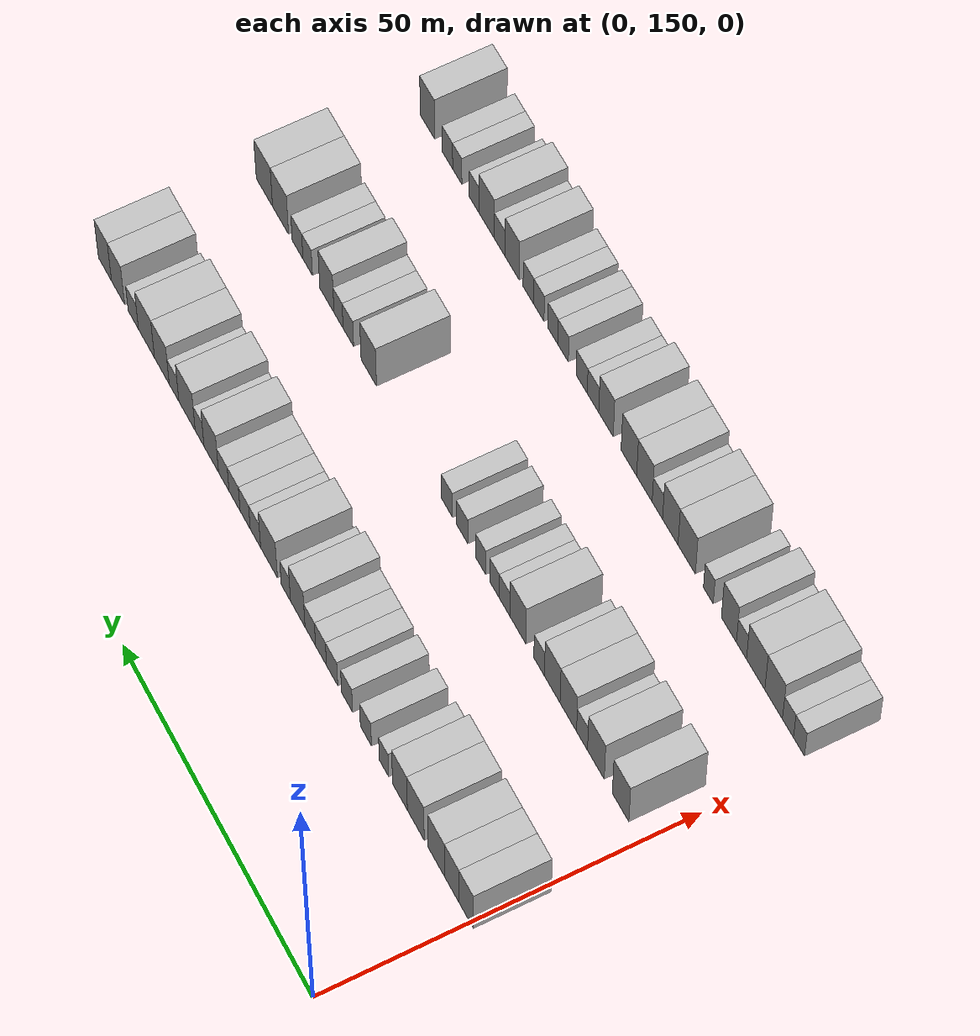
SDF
<sdf version="1.6">
 <world name="default">
  <model name="building_98">
   <static>1</static>
   <pose>25.0000 151.0022 0 0.000000 0.000000 0.000000</pose>
   <link name="link">
    <pose>0 0 4.50 0 0 0</pose>
    <collision name="collision"><geometry><box><size>10.0000 3.6112 9.0000</size></box></geometry></collision>
    <visual name="visual">
     <cast_shadows>0</cast_shadows>
     <geometry><box><size>10.0000 3.6112 9.0000</size></box></geometry>
     <material>
      <script>
       <uri>model://HANNAS_wall/materials/scripts</uri>
       <uri>model://HANNAS_wall/materials/textures</uri>
       <name>vrc/HANNAS_wall</name>
      </script>
     </material>
    </visual>
   </link>
  </model>
  <model name="building_99">
   <static>1</static>
   <pose>25.0000 154.6188 0 0.000000 0.000000 0.000000</pose>
   <link name="link">
    <pose>0 0 4.50 0 0 0</pose>
    <collision name="collision"><geometry><box><size>10.0000 3.6220 9.0000</size></box></geometry></collision>
    <visual name="visual">
     <cast_shadows>0</cast_shadows>
     <geometry><box><size>10.0000 3.6220 9.0000</size></box></geometry>
     <material>
      <script>
       <uri>model://HANNAS_wall/materials/scripts</uri>
       <uri>model://HANNAS_wall/materials/textures</uri>
       <name>vrc/HANNAS_wall</name>
      </script>
     </material>
    </visual>
   </link>
  </model>
  <model name="building_100">
   <static>1</static>
   <pose>25.0000 158.5015 0 0.000000 0.000000 0.000000</pose>
   <link name="link">
    <pose>0 0 4.50 0 0 0</pose>
    <collision name="collision"><geometry><box><size>10.0000 4.1433 9.0000</size></box></geometry></collision>
    <visual name="visual">
     <cast_shadows>0</cast_shadows>
     <geometry><box><size>10.0000 4.1433 9.0000</size></box></geometry>
     <material>
      <script>
       <uri>model://HANNAS_wall/materials/scripts</uri>
       <uri>model://HANNAS_wall/materials/textures</uri>
       <name>vrc/HANNAS_wall</name>
      </script>
     </material>
    </visual>
   </link>
  </model>
  <model name="building_101">
   <static>1</static>
   <pose>25.0000 163.7168 0 0.000000 0.000000 0.000000</pose>
   <link name="link">
    <pose>0 0 4.50 0 0 0</pose>
    <collision name="collision"><geometry><box><size>10.0000 4.2873 9.0000</size></box></geometry></collision>
    <visual name="visual">
     <cast_shadows>0</cast_shadows>
     <geometry><box><size>10.0000 4.2873 9.0000</size></box></geometry>
     <material>
      <script>
       <uri>model://HANNAS_wall/materials/scripts</uri>
       <uri>model://HANNAS_wall/materials/textures</uri>
       <name>vrc/HANNAS_wall</name>
      </script>
     </material>
    </visual>
   </link>
  </model>
  <model name="building_102">
   <static>1</static>
   <pose>25.0000 167.7423 0 0.000000 0.000000 0.000000</pose>
   <link name="link">
    <pose>0 0 4.50 0 0 0</pose>
    <collision name="collision"><geometry><box><size>10.0000 3.7638 9.0000</size></box></geometry></collision>
    <visual name="visual">
     <cast_shadows>0</cast_shadows>
     <geometry><box><size>10.0000 3.7638 9.0000</size></box></geometry>
     <material>
      <script>
       <uri>model://HANNAS_wall/materials/scripts</uri>
       <uri>model://HANNAS_wall/materials/textures</uri>
       <name>vrc/HANNAS_wall</name>
      </script>
     </material>
    </visual>
   </link>
  </model>
  <model name="building_103">
   <static>1</static>
   <pose>25.0000 171.8358 0 0.000000 0.000000 0.000000</pose>
   <link name="link">
    <pose>0 0 3.00 0 0 0</pose>
    <collision name="collision"><geometry><box><size>10.0000 2.4230 6.0000</size></box></geometry></collision>
    <visual name="visual">
     <cast_shadows>0</cast_shadows>
     <geometry><box><size>10.0000 2.4230 6.0000</size></box></geometry>
     <material>
      <script>
       <uri>model://HANNAS_wall/materials/scripts</uri>
       <uri>model://HANNAS_wall/materials/textures</uri>
       <name>vrc/HANNAS_wall</name>
      </script>
     </material>
    </visual>
   </link>
  </model>
  <model name="building_104">
   <static>1</static>
   <pose>25.0000 176.4850 0 0.000000 0.000000 0.000000</pose>
   <link name="link">
    <pose>0 0 3.00 0 0 0</pose>
    <collision name="collision"><geometry><box><size>10.0000 2.8755 6.0000</size></box></geometry></collision>
    <visual name="visual">
     <cast_shadows>0</cast_shadows>
     <geometry><box><size>10.0000 2.8755 6.0000</size></box></geometry>
     <material>
      <script>
       <uri>model://HANNAS_wall/materials/scripts</uri>
       <uri>model://HANNAS_wall/materials/textures</uri>
       <name>vrc/HANNAS_wall</name>
      </script>
     </material>
    </visual>
   </link>
  </model>
  <model name="building_105">
   <static>1</static>
   <pose>25.0000 181.3511 0 0.000000 0.000000 0.000000</pose>
   <link name="link">
    <pose>0 0 3.00 0 0 0</pose>
    <collision name="collision"><geometry><box><size>10.0000 2.8566 6.0000</size></box></geometry></collision>
    <visual name="visual">
     <cast_shadows>0</cast_shadows>
     <geometry><box><size>10.0000 2.8566 6.0000</size></box></geometry>
     <material>
      <script>
       <uri>model://HANNAS_wall/materials/scripts</uri>
       <uri>model://HANNAS_wall/materials/textures</uri>
       <name>vrc/HANNAS_wall</name>
      </script>
     </material>
    </visual>
   </link>
  </model>
  <model name="building_106">
   <static>1</static>
   <pose>25.0000 185.2522 0 0.000000 0.000000 0.000000</pose>
   <link name="link">
    <pose>0 0 3.00 0 0 0</pose>
    <collision name="collision"><geometry><box><size>10.0000 2.9457 6.0000</size></box></geometry></collision>
    <visual name="visual">
     <cast_shadows>0</cast_shadows>
     <geometry><box><size>10.0000 2.9457 6.0000</size></box></geometry>
     <material>
      <script>
       <uri>model://HANNAS_wall/materials/scripts</uri>
       <uri>model://HANNAS_wall/materials/textures</uri>
       <name>vrc/HANNAS_wall</name>
      </script>
     </material>
    </visual>
   </link>
  </model>
  <model name="building_107">
   <static>1</static>
   <pose>25.0000 188.1604 0 0.000000 0.000000 0.000000</pose>
   <link name="link">
    <pose>0 0 3.00 0 0 0</pose>
    <collision name="collision"><geometry><box><size>10.0000 2.8707 6.0000</size></box></geometry></collision>
    <visual name="visual">
     <cast_shadows>0</cast_shadows>
     <geometry><box><size>10.0000 2.8707 6.0000</size></box></geometry>
     <material>
      <script>
       <uri>model://HANNAS_wall/materials/scripts</uri>
       <uri>model://HANNAS_wall/materials/textures</uri>
       <name>vrc/HANNAS_wall</name>
      </script>
     </material>
    </visual>
   </link>
  </model>
  <model name="building_108">
   <static>1</static>
   <pose>25.0000 190.9846 0 0.000000 0.000000 0.000000</pose>
   <link name="link">
    <pose>0 0 3.00 0 0 0</pose>
    <collision name="collision"><geometry><box><size>10.0000 2.7776 6.0000</size></box></geometry></collision>
    <visual name="visual">
     <cast_shadows>0</cast_shadows>
     <geometry><box><size>10.0000 2.7776 6.0000</size></box></geometry>
     <material>
      <script>
       <uri>model://HANNAS_wall/materials/scripts</uri>
       <uri>model://HANNAS_wall/materials/textures</uri>
       <name>vrc/HANNAS_wall</name>
      </script>
     </material>
    </visual>
   </link>
  </model>
  <model name="building_109">
   <static>1</static>
   <pose>25.0000 194.2835 0 0.000000 0.000000 0.000000</pose>
   <link name="link">
    <pose>0 0 4.50 0 0 0</pose>
    <collision name="collision"><geometry><box><size>10.0000 3.8203 9.0000</size></box></geometry></collision>
    <visual name="visual">
     <cast_shadows>0</cast_shadows>
     <geometry><box><size>10.0000 3.8203 9.0000</size></box></geometry>
     <material>
      <script>
       <uri>model://HANNAS_wall/materials/scripts</uri>
       <uri>model://HANNAS_wall/materials/textures</uri>
       <name>vrc/HANNAS_wall</name>
      </script>
     </material>
    </visual>
   </link>
  </model>
  <model name="building_110">
   <static>1</static>
   <pose>25.0000 197.4323 0 0.000000 0.000000 0.000000</pose>
   <link name="link">
    <pose>0 0 3.00 0 0 0</pose>
    <collision name="collision"><geometry><box><size>10.0000 2.4772 6.0000</size></box></geometry></collision>
    <visual name="visual">
     <cast_shadows>0</cast_shadows>
     <geometry><box><size>10.0000 2.4772 6.0000</size></box></geometry>
     <material>
      <script>
       <uri>model://HANNAS_wall/materials/scripts</uri>
       <uri>model://HANNAS_wall/materials/textures</uri>
       <name>vrc/HANNAS_wall</name>
      </script>
     </material>
    </visual>
   </link>
  </model>
  <model name="building_111">
   <static>1</static>
   <pose>25.0000 201.9147 0 0.000000 0.000000 0.000000</pose>
   <link name="link">
    <pose>0 0 4.50 0 0 0</pose>
    <collision name="collision"><geometry><box><size>10.0000 4.4876 9.0000</size></box></geometry></collision>
    <visual name="visual">
     <cast_shadows>0</cast_shadows>
     <geometry><box><size>10.0000 4.4876 9.0000</size></box></geometry>
     <material>
      <script>
       <uri>model://HANNAS_wall/materials/scripts</uri>
       <uri>model://HANNAS_wall/materials/textures</uri>
       <name>vrc/HANNAS_wall</name>
      </script>
     </material>
    </visual>
   </link>
  </model>
  <model name="building_112">
   <static>1</static>
   <pose>25.0000 205.5487 0 0.000000 0.000000 0.000000</pose>
   <link name="link">
    <pose>0 0 3.00 0 0 0</pose>
    <collision name="collision"><geometry><box><size>10.0000 2.7806 6.0000</size></box></geometry></collision>
    <visual name="visual">
     <cast_shadows>0</cast_shadows>
     <geometry><box><size>10.0000 2.7806 6.0000</size></box></geometry>
     <material>
      <script>
       <uri>model://HANNAS_wall/materials/scripts</uri>
       <uri>model://HANNAS_wall/materials/textures</uri>
       <name>vrc/HANNAS_wall</name>
      </script>
     </material>
    </visual>
   </link>
  </model>
  <model name="building_113">
   <static>1</static>
   <pose>25.0000 208.3070 0 0.000000 0.000000 0.000000</pose>
   <link name="link">
    <pose>0 0 3.00 0 0 0</pose>
    <collision name="collision"><geometry><box><size>10.0000 2.7360 6.0000</size></box></geometry></collision>
    <visual name="visual">
     <cast_shadows>0</cast_shadows>
     <geometry><box><size>10.0000 2.7360 6.0000</size></box></geometry>
     <material>
      <script>
       <uri>model://HANNAS_wall/materials/scripts</uri>
       <uri>model://HANNAS_wall/materials/textures</uri>
       <name>vrc/HANNAS_wall</name>
      </script>
     </material>
    </visual>
   </link>
  </model>
  <model name="building_114">
   <static>1</static>
   <pose>25.0000 211.1646 0 0.000000 0.000000 0.000000</pose>
   <link name="link">
    <pose>0 0 3.00 0 0 0</pose>
    <collision name="collision"><geometry><box><size>10.0000 2.9790 6.0000</size></box></geometry></collision>
    <visual name="visual">
     <cast_shadows>0</cast_shadows>
     <geometry><box><size>10.0000 2.9790 6.0000</size></box></geometry>
     <material>
      <script>
       <uri>model://HANNAS_wall/materials/scripts</uri>
       <uri>model://HANNAS_wall/materials/textures</uri>
       <name>vrc/HANNAS_wall</name>
      </script>
     </material>
    </visual>
   </link>
  </model>
  <model name="building_115">
   <static>1</static>
   <pose>25.0000 214.0817 0 0.000000 0.000000 0.000000</pose>
   <link name="link">
    <pose>0 0 3.00 0 0 0</pose>
    <collision name="collision"><geometry><box><size>10.0000 2.8554 6.0000</size></box></geometry></collision>
    <visual name="visual">
     <cast_shadows>0</cast_shadows>
     <geometry><box><size>10.0000 2.8554 6.0000</size></box></geometry>
     <material>
      <script>
       <uri>model://HANNAS_wall/materials/scripts</uri>
       <uri>model://HANNAS_wall/materials/textures</uri>
       <name>vrc/HANNAS_wall</name>
      </script>
     </material>
    </visual>
   </link>
  </model>
  <model name="building_116">
   <static>1</static>
   <pose>25.0000 217.4850 0 0.000000 0.000000 0.000000</pose>
   <link name="link">
    <pose>0 0 4.50 0 0 0</pose>
    <collision name="collision"><geometry><box><size>10.0000 3.9511 9.0000</size></box></geometry></collision>
    <visual name="visual">
     <cast_shadows>0</cast_shadows>
     <geometry><box><size>10.0000 3.9511 9.0000</size></box></geometry>
     <material>
      <script>
       <uri>model://HANNAS_wall/materials/scripts</uri>
       <uri>model://HANNAS_wall/materials/textures</uri>
       <name>vrc/HANNAS_wall</name>
      </script>
     </material>
    </visual>
   </link>
  </model>
  <model name="building_117">
   <static>1</static>
   <pose>25.0000 220.6739 0 0.000000 0.000000 0.000000</pose>
   <link name="link">
    <pose>0 0 3.00 0 0 0</pose>
    <collision name="collision"><geometry><box><size>10.0000 2.4268 6.0000</size></box></geometry></collision>
    <visual name="visual">
     <cast_shadows>0</cast_shadows>
     <geometry><box><size>10.0000 2.4268 6.0000</size></box></geometry>
     <material>
      <script>
       <uri>model://HANNAS_wall/materials/scripts</uri>
       <uri>model://HANNAS_wall/materials/textures</uri>
       <name>vrc/HANNAS_wall</name>
      </script>
     </material>
    </visual>
   </link>
  </model>
  <model name="building_118">
   <static>1</static>
   <pose>25.0000 224.1111 0 0.000000 0.000000 0.000000</pose>
   <link name="link">
    <pose>0 0 4.50 0 0 0</pose>
    <collision name="collision"><geometry><box><size>10.0000 4.4477 9.0000</size></box></geometry></collision>
    <visual name="visual">
     <cast_shadows>0</cast_shadows>
     <geometry><box><size>10.0000 4.4477 9.0000</size></box></geometry>
     <material>
      <script>
       <uri>model://HANNAS_wall/materials/scripts</uri>
       <uri>model://HANNAS_wall/materials/textures</uri>
       <name>vrc/HANNAS_wall</name>
      </script>
     </material>
    </visual>
   </link>
  </model>
  <model name="building_119">
   <static>1</static>
   <pose>25.0000 227.6734 0 0.000000 0.000000 0.000000</pose>
   <link name="link">
    <pose>0 0 3.00 0 0 0</pose>
    <collision name="collision"><geometry><box><size>10.0000 2.6770 6.0000</size></box></geometry></collision>
    <visual name="visual">
     <cast_shadows>0</cast_shadows>
     <geometry><box><size>10.0000 2.6770 6.0000</size></box></geometry>
     <material>
      <script>
       <uri>model://HANNAS_wall/materials/scripts</uri>
       <uri>model://HANNAS_wall/materials/textures</uri>
       <name>vrc/HANNAS_wall</name>
      </script>
     </material>
    </visual>
   </link>
  </model>
  <model name="building_120">
   <static>1</static>
   <pose>25.0000 231.0528 0 0.000000 0.000000 0.000000</pose>
   <link name="link">
    <pose>0 0 4.50 0 0 0</pose>
    <collision name="collision"><geometry><box><size>10.0000 4.0817 9.0000</size></box></geometry></collision>
    <visual name="visual">
     <cast_shadows>0</cast_shadows>
     <geometry><box><size>10.0000 4.0817 9.0000</size></box></geometry>
     <material>
      <script>
       <uri>model://HANNAS_wall/materials/scripts</uri>
       <uri>model://HANNAS_wall/materials/textures</uri>
       <name>vrc/HANNAS_wall</name>
      </script>
     </material>
    </visual>
   </link>
  </model>
  <model name="building_121">
   <static>1</static>
   <pose>25.0000 235.3153 0 0.000000 0.000000 0.000000</pose>
   <link name="link">
    <pose>0 0 4.50 0 0 0</pose>
    <collision name="collision"><geometry><box><size>10.0000 4.4433 9.0000</size></box></geometry></collision>
    <visual name="visual">
     <cast_shadows>0</cast_shadows>
     <geometry><box><size>10.0000 4.4433 9.0000</size></box></geometry>
     <material>
      <script>
       <uri>model://HANNAS_wall/materials/scripts</uri>
       <uri>model://HANNAS_wall/materials/textures</uri>
       <name>vrc/HANNAS_wall</name>
      </script>
     </material>
    </visual>
   </link>
  </model>
  <model name="building_122">
   <static>1</static>
   <pose>25.0000 238.9816 0 0.000000 0.000000 0.000000</pose>
   <link name="link">
    <pose>0 0 3.00 0 0 0</pose>
    <collision name="collision"><geometry><box><size>10.0000 2.8893 6.0000</size></box></geometry></collision>
    <visual name="visual">
     <cast_shadows>0</cast_shadows>
     <geometry><box><size>10.0000 2.8893 6.0000</size></box></geometry>
     <material>
      <script>
       <uri>model://HANNAS_wall/materials/scripts</uri>
       <uri>model://HANNAS_wall/materials/textures</uri>
       <name>vrc/HANNAS_wall</name>
      </script>
     </material>
    </visual>
   </link>
  </model>
  <model name="building_123">
   <static>1</static>
   <pose>25.0000 243.2667 0 0.000000 0.000000 0.000000</pose>
   <link name="link">
    <pose>0 0 4.50 0 0 0</pose>
    <collision name="collision"><geometry><box><size>10.0000 3.6809 9.0000</size></box></geometry></collision>
    <visual name="visual">
     <cast_shadows>0</cast_shadows>
     <geometry><box><size>10.0000 3.6809 9.0000</size></box></geometry>
     <material>
      <script>
       <uri>model://HANNAS_wall/materials/scripts</uri>
       <uri>model://HANNAS_wall/materials/textures</uri>
       <name>vrc/HANNAS_wall</name>
      </script>
     </material>
    </visual>
   </link>
  </model>
  <model name="building_124">
   <static>1</static>
   <pose>25.0000 246.9522 0 0.000000 0.000000 0.000000</pose>
   <link name="link">
    <pose>0 0 4.50 0 0 0</pose>
    <collision name="collision"><geometry><box><size>10.0000 3.6901 9.0000</size></box></geometry></collision>
    <visual name="visual">
     <cast_shadows>0</cast_shadows>
     <geometry><box><size>10.0000 3.6901 9.0000</size></box></geometry>
     <material>
      <script>
       <uri>model://HANNAS_wall/materials/scripts</uri>
       <uri>model://HANNAS_wall/materials/textures</uri>
       <name>vrc/HANNAS_wall</name>
      </script>
     </material>
    </visual>
   </link>
  </model>
  <model name="building_225">
   <static>1</static>
   <pose>47.0000 154.9216 0 0.000000 0.000000 0.000000</pose>
   <link name="link">
    <pose>0 0 4.50 0 0 0</pose>
    <collision name="collision"><geometry><box><size>10.0000 4.0617 9.0000</size></box></geometry></collision>
    <visual name="visual">
     <cast_shadows>0</cast_shadows>
     <geometry><box><size>10.0000 4.0617 9.0000</size></box></geometry>
     <material>
      <script>
       <uri>model://HANNAS_wall/materials/scripts</uri>
       <uri>model://HANNAS_wall/materials/textures</uri>
       <name>vrc/HANNAS_wall</name>
      </script>
     </material>
    </visual>
   </link>
  </model>
  <model name="building_226">
   <static>1</static>
   <pose>47.0000 161.0311 0 0.000000 0.000000 0.000000</pose>
   <link name="link">
    <pose>0 0 4.50 0 0 0</pose>
    <collision name="collision"><geometry><box><size>10.0000 4.1574 9.0000</size></box></geometry></collision>
    <visual name="visual">
     <cast_shadows>0</cast_shadows>
     <geometry><box><size>10.0000 4.1574 9.0000</size></box></geometry>
     <material>
      <script>
       <uri>model://HANNAS_wall/materials/scripts</uri>
       <uri>model://HANNAS_wall/materials/textures</uri>
       <name>vrc/HANNAS_wall</name>
      </script>
     </material>
    </visual>
   </link>
  </model>
  <model name="building_227">
   <static>1</static>
   <pose>47.0000 164.4727 0 0.000000 0.000000 0.000000</pose>
   <link name="link">
    <pose>0 0 3.00 0 0 0</pose>
    <collision name="collision"><geometry><box><size>10.0000 2.7258 6.0000</size></box></geometry></collision>
    <visual name="visual">
     <cast_shadows>0</cast_shadows>
     <geometry><box><size>10.0000 2.7258 6.0000</size></box></geometry>
     <material>
      <script>
       <uri>model://HANNAS_wall/materials/scripts</uri>
       <uri>model://HANNAS_wall/materials/textures</uri>
       <name>vrc/HANNAS_wall</name>
      </script>
     </material>
    </visual>
   </link>
  </model>
  <model name="building_228">
   <static>1</static>
   <pose>47.0000 167.8966 0 0.000000 0.000000 0.000000</pose>
   <link name="link">
    <pose>0 0 4.50 0 0 0</pose>
    <collision name="collision"><geometry><box><size>10.0000 4.1222 9.0000</size></box></geometry></collision>
    <visual name="visual">
     <cast_shadows>0</cast_shadows>
     <geometry><box><size>10.0000 4.1222 9.0000</size></box></geometry>
     <material>
      <script>
       <uri>model://HANNAS_wall/materials/scripts</uri>
       <uri>model://HANNAS_wall/materials/textures</uri>
       <name>vrc/HANNAS_wall</name>
      </script>
     </material>
    </visual>
   </link>
  </model>
  <model name="building_229">
   <static>1</static>
   <pose>47.0000 171.9178 0 0.000000 0.000000 0.000000</pose>
   <link name="link">
    <pose>0 0 4.50 0 0 0</pose>
    <collision name="collision"><geometry><box><size>10.0000 3.9202 9.0000</size></box></geometry></collision>
    <visual name="visual">
     <cast_shadows>0</cast_shadows>
     <geometry><box><size>10.0000 3.9202 9.0000</size></box></geometry>
     <material>
      <script>
       <uri>model://HANNAS_wall/materials/scripts</uri>
       <uri>model://HANNAS_wall/materials/textures</uri>
       <name>vrc/HANNAS_wall</name>
      </script>
     </material>
    </visual>
   </link>
  </model>
  <model name="building_230">
   <static>1</static>
   <pose>47.0000 175.2188 0 0.000000 0.000000 0.000000</pose>
   <link name="link">
    <pose>0 0 3.00 0 0 0</pose>
    <collision name="collision"><geometry><box><size>10.0000 2.6819 6.0000</size></box></geometry></collision>
    <visual name="visual">
     <cast_shadows>0</cast_shadows>
     <geometry><box><size>10.0000 2.6819 6.0000</size></box></geometry>
     <material>
      <script>
       <uri>model://HANNAS_wall/materials/scripts</uri>
       <uri>model://HANNAS_wall/materials/textures</uri>
       <name>vrc/HANNAS_wall</name>
      </script>
     </material>
    </visual>
   </link>
  </model>
  <model name="building_231">
   <static>1</static>
   <pose>47.0000 180.5723 0 0.000000 0.000000 0.000000</pose>
   <link name="link">
    <pose>0 0 4.50 0 0 0</pose>
    <collision name="collision"><geometry><box><size>10.0000 4.0250 9.0000</size></box></geometry></collision>
    <visual name="visual">
     <cast_shadows>0</cast_shadows>
     <geometry><box><size>10.0000 4.0250 9.0000</size></box></geometry>
     <material>
      <script>
       <uri>model://HANNAS_wall/materials/scripts</uri>
       <uri>model://HANNAS_wall/materials/textures</uri>
       <name>vrc/HANNAS_wall</name>
      </script>
     </material>
    </visual>
   </link>
  </model>
  <model name="building_232">
   <static>1</static>
   <pose>47.0000 183.9924 0 0.000000 0.000000 0.000000</pose>
   <link name="link">
    <pose>0 0 3.00 0 0 0</pose>
    <collision name="collision"><geometry><box><size>10.0000 2.8152 6.0000</size></box></geometry></collision>
    <visual name="visual">
     <cast_shadows>0</cast_shadows>
     <geometry><box><size>10.0000 2.8152 6.0000</size></box></geometry>
     <material>
      <script>
       <uri>model://HANNAS_wall/materials/scripts</uri>
       <uri>model://HANNAS_wall/materials/textures</uri>
       <name>vrc/HANNAS_wall</name>
      </script>
     </material>
    </visual>
   </link>
  </model>
  <model name="building_233">
   <static>1</static>
   <pose>47.0000 186.6085 0 0.000000 0.000000 0.000000</pose>
   <link name="link">
    <pose>0 0 3.00 0 0 0</pose>
    <collision name="collision"><geometry><box><size>10.0000 2.4171 6.0000</size></box></geometry></collision>
    <visual name="visual">
     <cast_shadows>0</cast_shadows>
     <geometry><box><size>10.0000 2.4171 6.0000</size></box></geometry>
     <material>
      <script>
       <uri>model://HANNAS_wall/materials/scripts</uri>
       <uri>model://HANNAS_wall/materials/textures</uri>
       <name>vrc/HANNAS_wall</name>
      </script>
     </material>
    </visual>
   </link>
  </model>
  <model name="building_234">
   <static>1</static>
   <pose>47.0000 190.1252 0 0.000000 0.000000 0.000000</pose>
   <link name="link">
    <pose>0 0 3.00 0 0 0</pose>
    <collision name="collision"><geometry><box><size>10.0000 2.6162 6.0000</size></box></geometry></collision>
    <visual name="visual">
     <cast_shadows>0</cast_shadows>
     <geometry><box><size>10.0000 2.6162 6.0000</size></box></geometry>
     <material>
      <script>
       <uri>model://HANNAS_wall/materials/scripts</uri>
       <uri>model://HANNAS_wall/materials/textures</uri>
       <name>vrc/HANNAS_wall</name>
      </script>
     </material>
    </visual>
   </link>
  </model>
  <model name="building_235">
   <static>1</static>
   <pose>47.0000 194.9132 0 0.000000 0.000000 0.000000</pose>
   <link name="link">
    <pose>0 0 3.00 0 0 0</pose>
    <collision name="collision"><geometry><box><size>10.0000 2.9598 6.0000</size></box></geometry></collision>
    <visual name="visual">
     <cast_shadows>0</cast_shadows>
     <geometry><box><size>10.0000 2.9598 6.0000</size></box></geometry>
     <material>
      <script>
       <uri>model://HANNAS_wall/materials/scripts</uri>
       <uri>model://HANNAS_wall/materials/textures</uri>
       <name>vrc/HANNAS_wall</name>
      </script>
     </material>
    </visual>
   </link>
  </model>
  <model name="building_236">
   <static>1</static>
   <pose>47.0000 198.8404 0 0.000000 0.000000 0.000000</pose>
   <link name="link">
    <pose>0 0 3.00 0 0 0</pose>
    <collision name="collision"><geometry><box><size>10.0000 2.8946 6.0000</size></box></geometry></collision>
    <visual name="visual">
     <cast_shadows>0</cast_shadows>
     <geometry><box><size>10.0000 2.8946 6.0000</size></box></geometry>
     <material>
      <script>
       <uri>model://HANNAS_wall/materials/scripts</uri>
       <uri>model://HANNAS_wall/materials/textures</uri>
       <name>vrc/HANNAS_wall</name>
      </script>
     </material>
    </visual>
   </link>
  </model>
  <model name="building_237">
   <static>1</static>
   <pose>47.0000 219.4676 0 0.000000 0.000000 0.000000</pose>
   <link name="link">
    <pose>0 0 4.50 0 0 0</pose>
    <collision name="collision"><geometry><box><size>10.0000 4.1200 9.0000</size></box></geometry></collision>
    <visual name="visual">
     <cast_shadows>0</cast_shadows>
     <geometry><box><size>10.0000 4.1200 9.0000</size></box></geometry>
     <material>
      <script>
       <uri>model://HANNAS_wall/materials/scripts</uri>
       <uri>model://HANNAS_wall/materials/textures</uri>
       <name>vrc/HANNAS_wall</name>
      </script>
     </material>
    </visual>
   </link>
  </model>
  <model name="building_238">
   <static>1</static>
   <pose>47.0000 224.9446 0 0.000000 0.000000 0.000000</pose>
   <link name="link">
    <pose>0 0 3.00 0 0 0</pose>
    <collision name="collision"><geometry><box><size>10.0000 2.8341 6.0000</size></box></geometry></collision>
    <visual name="visual">
     <cast_shadows>0</cast_shadows>
     <geometry><box><size>10.0000 2.8341 6.0000</size></box></geometry>
     <material>
      <script>
       <uri>model://HANNAS_wall/materials/scripts</uri>
       <uri>model://HANNAS_wall/materials/textures</uri>
       <name>vrc/HANNAS_wall</name>
      </script>
     </material>
    </visual>
   </link>
  </model>
  <model name="building_239">
   <static>1</static>
   <pose>47.0000 227.5889 0 0.000000 0.000000 0.000000</pose>
   <link name="link">
    <pose>0 0 3.00 0 0 0</pose>
    <collision name="collision"><geometry><box><size>10.0000 2.4545 6.0000</size></box></geometry></collision>
    <visual name="visual">
     <cast_shadows>0</cast_shadows>
     <geometry><box><size>10.0000 2.4545 6.0000</size></box></geometry>
     <material>
      <script>
       <uri>model://HANNAS_wall/materials/scripts</uri>
       <uri>model://HANNAS_wall/materials/textures</uri>
       <name>vrc/HANNAS_wall</name>
      </script>
     </material>
    </visual>
   </link>
  </model>
  <model name="building_240">
   <static>1</static>
   <pose>47.0000 230.7404 0 0.000000 0.000000 0.000000</pose>
   <link name="link">
    <pose>0 0 4.50 0 0 0</pose>
    <collision name="collision"><geometry><box><size>10.0000 3.8484 9.0000</size></box></geometry></collision>
    <visual name="visual">
     <cast_shadows>0</cast_shadows>
     <geometry><box><size>10.0000 3.8484 9.0000</size></box></geometry>
     <material>
      <script>
       <uri>model://HANNAS_wall/materials/scripts</uri>
       <uri>model://HANNAS_wall/materials/textures</uri>
       <name>vrc/HANNAS_wall</name>
      </script>
     </material>
    </visual>
   </link>
  </model>
  <model name="building_241">
   <static>1</static>
   <pose>47.0000 235.9636 0 0.000000 0.000000 0.000000</pose>
   <link name="link">
    <pose>0 0 3.00 0 0 0</pose>
    <collision name="collision"><geometry><box><size>10.0000 2.5980 6.0000</size></box></geometry></collision>
    <visual name="visual">
     <cast_shadows>0</cast_shadows>
     <geometry><box><size>10.0000 2.5980 6.0000</size></box></geometry>
     <material>
      <script>
       <uri>model://HANNAS_wall/materials/scripts</uri>
       <uri>model://HANNAS_wall/materials/textures</uri>
       <name>vrc/HANNAS_wall</name>
      </script>
     </material>
    </visual>
   </link>
  </model>
  <model name="building_242">
   <static>1</static>
   <pose>47.0000 238.7320 0 0.000000 0.000000 0.000000</pose>
   <link name="link">
    <pose>0 0 3.00 0 0 0</pose>
    <collision name="collision"><geometry><box><size>10.0000 2.9387 6.0000</size></box></geometry></collision>
    <visual name="visual">
     <cast_shadows>0</cast_shadows>
     <geometry><box><size>10.0000 2.9387 6.0000</size></box></geometry>
     <material>
      <script>
       <uri>model://HANNAS_wall/materials/scripts</uri>
       <uri>model://HANNAS_wall/materials/textures</uri>
       <name>vrc/HANNAS_wall</name>
      </script>
     </material>
    </visual>
   </link>
  </model>
  <model name="building_243">
   <static>1</static>
   <pose>47.0000 243.4072 0 0.000000 0.000000 0.000000</pose>
   <link name="link">
    <pose>0 0 4.50 0 0 0</pose>
    <collision name="collision"><geometry><box><size>10.0000 4.4118 9.0000</size></box></geometry></collision>
    <visual name="visual">
     <cast_shadows>0</cast_shadows>
     <geometry><box><size>10.0000 4.4118 9.0000</size></box></geometry>
     <material>
      <script>
       <uri>model://HANNAS_wall/materials/scripts</uri>
       <uri>model://HANNAS_wall/materials/textures</uri>
       <name>vrc/HANNAS_wall</name>
      </script>
     </material>
    </visual>
   </link>
  </model>
  <model name="building_244">
   <static>1</static>
   <pose>47.0000 247.8577 0 0.000000 0.000000 0.000000</pose>
   <link name="link">
    <pose>0 0 4.50 0 0 0</pose>
    <collision name="collision"><geometry><box><size>10.0000 4.4893 9.0000</size></box></geometry></collision>
    <visual name="visual">
     <cast_shadows>0</cast_shadows>
     <geometry><box><size>10.0000 4.4893 9.0000</size></box></geometry>
     <material>
      <script>
       <uri>model://HANNAS_wall/materials/scripts</uri>
       <uri>model://HANNAS_wall/materials/textures</uri>
       <name>vrc/HANNAS_wall</name>
      </script>
     </material>
    </visual>
   </link>
  </model>
  <model name="building_339">
   <static>1</static>
   <pose>69.0000 152.2772 0 0.000000 0.000000 0.000000</pose>
   <link name="link">
    <pose>0 0 3.00 0 0 0</pose>
    <collision name="collision"><geometry><box><size>10.0000 2.6586 6.0000</size></box></geometry></collision>
    <visual name="visual">
     <cast_shadows>0</cast_shadows>
     <geometry><box><size>10.0000 2.6586 6.0000</size></box></geometry>
     <material>
      <script>
       <uri>model://HANNAS_wall/materials/scripts</uri>
       <uri>model://HANNAS_wall/materials/textures</uri>
       <name>vrc/HANNAS_wall</name>
      </script>
     </material>
    </visual>
   </link>
  </model>
  <model name="building_340">
   <static>1</static>
   <pose>69.0000 154.9420 0 0.000000 0.000000 0.000000</pose>
   <link name="link">
    <pose>0 0 3.00 0 0 0</pose>
    <collision name="collision"><geometry><box><size>10.0000 2.6712 6.0000</size></box></geometry></collision>
    <visual name="visual">
     <cast_shadows>0</cast_shadows>
     <geometry><box><size>10.0000 2.6712 6.0000</size></box></geometry>
     <material>
      <script>
       <uri>model://HANNAS_wall/materials/scripts</uri>
       <uri>model://HANNAS_wall/materials/textures</uri>
       <name>vrc/HANNAS_wall</name>
      </script>
     </material>
    </visual>
   </link>
  </model>
  <model name="building_341">
   <static>1</static>
   <pose>69.0000 158.4082 0 0.000000 0.000000 0.000000</pose>
   <link name="link">
    <pose>0 0 4.50 0 0 0</pose>
    <collision name="collision"><geometry><box><size>10.0000 4.2612 9.0000</size></box></geometry></collision>
    <visual name="visual">
     <cast_shadows>0</cast_shadows>
     <geometry><box><size>10.0000 4.2612 9.0000</size></box></geometry>
     <material>
      <script>
       <uri>model://HANNAS_wall/materials/scripts</uri>
       <uri>model://HANNAS_wall/materials/textures</uri>
       <name>vrc/HANNAS_wall</name>
      </script>
     </material>
    </visual>
   </link>
  </model>
  <model name="building_342">
   <static>1</static>
   <pose>69.0000 162.7746 0 0.000000 0.000000 0.000000</pose>
   <link name="link">
    <pose>0 0 4.50 0 0 0</pose>
    <collision name="collision"><geometry><box><size>10.0000 4.4715 9.0000</size></box></geometry></collision>
    <visual name="visual">
     <cast_shadows>0</cast_shadows>
     <geometry><box><size>10.0000 4.4715 9.0000</size></box></geometry>
     <material>
      <script>
       <uri>model://HANNAS_wall/materials/scripts</uri>
       <uri>model://HANNAS_wall/materials/textures</uri>
       <name>vrc/HANNAS_wall</name>
      </script>
     </material>
    </visual>
   </link>
  </model>
  <model name="building_343">
   <static>1</static>
   <pose>69.0000 166.2478 0 0.000000 0.000000 0.000000</pose>
   <link name="link">
    <pose>0 0 3.00 0 0 0</pose>
    <collision name="collision"><geometry><box><size>10.0000 2.4749 6.0000</size></box></geometry></collision>
    <visual name="visual">
     <cast_shadows>0</cast_shadows>
     <geometry><box><size>10.0000 2.4749 6.0000</size></box></geometry>
     <material>
      <script>
       <uri>model://HANNAS_wall/materials/scripts</uri>
       <uri>model://HANNAS_wall/materials/textures</uri>
       <name>vrc/HANNAS_wall</name>
      </script>
     </material>
    </visual>
   </link>
  </model>
  <model name="building_344">
   <static>1</static>
   <pose>69.0000 169.3270 0 0.000000 0.000000 0.000000</pose>
   <link name="link">
    <pose>0 0 4.50 0 0 0</pose>
    <collision name="collision"><geometry><box><size>10.0000 3.6834 9.0000</size></box></geometry></collision>
    <visual name="visual">
     <cast_shadows>0</cast_shadows>
     <geometry><box><size>10.0000 3.6834 9.0000</size></box></geometry>
     <material>
      <script>
       <uri>model://HANNAS_wall/materials/scripts</uri>
       <uri>model://HANNAS_wall/materials/textures</uri>
       <name>vrc/HANNAS_wall</name>
      </script>
     </material>
    </visual>
   </link>
  </model>
  <model name="building_345">
   <static>1</static>
   <pose>69.0000 174.3810 0 0.000000 0.000000 0.000000</pose>
   <link name="link">
    <pose>0 0 3.00 0 0 0</pose>
    <collision name="collision"><geometry><box><size>10.0000 2.4246 6.0000</size></box></geometry></collision>
    <visual name="visual">
     <cast_shadows>0</cast_shadows>
     <geometry><box><size>10.0000 2.4246 6.0000</size></box></geometry>
     <material>
      <script>
       <uri>model://HANNAS_wall/materials/scripts</uri>
       <uri>model://HANNAS_wall/materials/textures</uri>
       <name>vrc/HANNAS_wall</name>
      </script>
     </material>
    </visual>
   </link>
  </model>
  <model name="building_346">
   <static>1</static>
   <pose>69.0000 179.7601 0 0.000000 0.000000 0.000000</pose>
   <link name="link">
    <pose>0 0 4.50 0 0 0</pose>
    <collision name="collision"><geometry><box><size>10.0000 4.3335 9.0000</size></box></geometry></collision>
    <visual name="visual">
     <cast_shadows>0</cast_shadows>
     <geometry><box><size>10.0000 4.3335 9.0000</size></box></geometry>
     <material>
      <script>
       <uri>model://HANNAS_wall/materials/scripts</uri>
       <uri>model://HANNAS_wall/materials/textures</uri>
       <name>vrc/HANNAS_wall</name>
      </script>
     </material>
    </visual>
   </link>
  </model>
  <model name="building_347">
   <static>1</static>
   <pose>69.0000 183.8630 0 0.000000 0.000000 0.000000</pose>
   <link name="link">
    <pose>0 0 4.50 0 0 0</pose>
    <collision name="collision"><geometry><box><size>10.0000 3.8722 9.0000</size></box></geometry></collision>
    <visual name="visual">
     <cast_shadows>0</cast_shadows>
     <geometry><box><size>10.0000 3.8722 9.0000</size></box></geometry>
     <material>
      <script>
       <uri>model://HANNAS_wall/materials/scripts</uri>
       <uri>model://HANNAS_wall/materials/textures</uri>
       <name>vrc/HANNAS_wall</name>
      </script>
     </material>
    </visual>
   </link>
  </model>
  <model name="building_348">
   <static>1</static>
   <pose>69.0000 187.1052 0 0.000000 0.000000 0.000000</pose>
   <link name="link">
    <pose>0 0 3.00 0 0 0</pose>
    <collision name="collision"><geometry><box><size>10.0000 2.6122 6.0000</size></box></geometry></collision>
    <visual name="visual">
     <cast_shadows>0</cast_shadows>
     <geometry><box><size>10.0000 2.6122 6.0000</size></box></geometry>
     <material>
      <script>
       <uri>model://HANNAS_wall/materials/scripts</uri>
       <uri>model://HANNAS_wall/materials/textures</uri>
       <name>vrc/HANNAS_wall</name>
      </script>
     </material>
    </visual>
   </link>
  </model>
  <model name="building_349">
   <static>1</static>
   <pose>69.0000 190.3741 0 0.000000 0.000000 0.000000</pose>
   <link name="link">
    <pose>0 0 4.50 0 0 0</pose>
    <collision name="collision"><geometry><box><size>10.0000 3.9257 9.0000</size></box></geometry></collision>
    <visual name="visual">
     <cast_shadows>0</cast_shadows>
     <geometry><box><size>10.0000 3.9257 9.0000</size></box></geometry>
     <material>
      <script>
       <uri>model://HANNAS_wall/materials/scripts</uri>
       <uri>model://HANNAS_wall/materials/textures</uri>
       <name>vrc/HANNAS_wall</name>
      </script>
     </material>
    </visual>
   </link>
  </model>
  <model name="building_350">
   <static>1</static>
   <pose>69.0000 194.3121 0 0.000000 0.000000 0.000000</pose>
   <link name="link">
    <pose>0 0 4.50 0 0 0</pose>
    <collision name="collision"><geometry><box><size>10.0000 3.9503 9.0000</size></box></geometry></collision>
    <visual name="visual">
     <cast_shadows>0</cast_shadows>
     <geometry><box><size>10.0000 3.9503 9.0000</size></box></geometry>
     <material>
      <script>
       <uri>model://HANNAS_wall/materials/scripts</uri>
       <uri>model://HANNAS_wall/materials/textures</uri>
       <name>vrc/HANNAS_wall</name>
      </script>
     </material>
    </visual>
   </link>
  </model>
  <model name="building_351">
   <static>1</static>
   <pose>69.0000 200.1412 0 0.000000 0.000000 0.000000</pose>
   <link name="link">
    <pose>0 0 4.50 0 0 0</pose>
    <collision name="collision"><geometry><box><size>10.0000 3.7079 9.0000</size></box></geometry></collision>
    <visual name="visual">
     <cast_shadows>0</cast_shadows>
     <geometry><box><size>10.0000 3.7079 9.0000</size></box></geometry>
     <material>
      <script>
       <uri>model://HANNAS_wall/materials/scripts</uri>
       <uri>model://HANNAS_wall/materials/textures</uri>
       <name>vrc/HANNAS_wall</name>
      </script>
     </material>
    </visual>
   </link>
  </model>
  <model name="building_352">
   <static>1</static>
   <pose>69.0000 203.4757 0 0.000000 0.000000 0.000000</pose>
   <link name="link">
    <pose>0 0 3.00 0 0 0</pose>
    <collision name="collision"><geometry><box><size>10.0000 2.9611 6.0000</size></box></geometry></collision>
    <visual name="visual">
     <cast_shadows>0</cast_shadows>
     <geometry><box><size>10.0000 2.9611 6.0000</size></box></geometry>
     <material>
      <script>
       <uri>model://HANNAS_wall/materials/scripts</uri>
       <uri>model://HANNAS_wall/materials/textures</uri>
       <name>vrc/HANNAS_wall</name>
      </script>
     </material>
    </visual>
   </link>
  </model>
  <model name="building_353">
   <static>1</static>
   <pose>69.0000 206.3869 0 0.000000 0.000000 0.000000</pose>
   <link name="link">
    <pose>0 0 3.00 0 0 0</pose>
    <collision name="collision"><geometry><box><size>10.0000 2.8614 6.0000</size></box></geometry></collision>
    <visual name="visual">
     <cast_shadows>0</cast_shadows>
     <geometry><box><size>10.0000 2.8614 6.0000</size></box></geometry>
     <material>
      <script>
       <uri>model://HANNAS_wall/materials/scripts</uri>
       <uri>model://HANNAS_wall/materials/textures</uri>
       <name>vrc/HANNAS_wall</name>
      </script>
     </material>
    </visual>
   </link>
  </model>
  <model name="building_354">
   <static>1</static>
   <pose>69.0000 211.1817 0 0.000000 0.000000 0.000000</pose>
   <link name="link">
    <pose>0 0 3.00 0 0 0</pose>
    <collision name="collision"><geometry><box><size>10.0000 2.7281 6.0000</size></box></geometry></collision>
    <visual name="visual">
     <cast_shadows>0</cast_shadows>
     <geometry><box><size>10.0000 2.7281 6.0000</size></box></geometry>
     <material>
      <script>
       <uri>model://HANNAS_wall/materials/scripts</uri>
       <uri>model://HANNAS_wall/materials/textures</uri>
       <name>vrc/HANNAS_wall</name>
      </script>
     </material>
    </visual>
   </link>
  </model>
  <model name="building_355">
   <static>1</static>
   <pose>69.0000 213.8429 0 0.000000 0.000000 0.000000</pose>
   <link name="link">
    <pose>0 0 3.00 0 0 0</pose>
    <collision name="collision"><geometry><box><size>10.0000 2.5944 6.0000</size></box></geometry></collision>
    <visual name="visual">
     <cast_shadows>0</cast_shadows>
     <geometry><box><size>10.0000 2.5944 6.0000</size></box></geometry>
     <material>
      <script>
       <uri>model://HANNAS_wall/materials/scripts</uri>
       <uri>model://HANNAS_wall/materials/textures</uri>
       <name>vrc/HANNAS_wall</name>
      </script>
     </material>
    </visual>
   </link>
  </model>
  <model name="building_356">
   <static>1</static>
   <pose>69.0000 217.5061 0 0.000000 0.000000 0.000000</pose>
   <link name="link">
    <pose>0 0 3.00 0 0 0</pose>
    <collision name="collision"><geometry><box><size>10.0000 2.7319 6.0000</size></box></geometry></collision>
    <visual name="visual">
     <cast_shadows>0</cast_shadows>
     <geometry><box><size>10.0000 2.7319 6.0000</size></box></geometry>
     <material>
      <script>
       <uri>model://HANNAS_wall/materials/scripts</uri>
       <uri>model://HANNAS_wall/materials/textures</uri>
       <name>vrc/HANNAS_wall</name>
      </script>
     </material>
    </visual>
   </link>
  </model>
  <model name="building_357">
   <static>1</static>
   <pose>69.0000 220.2481 0 0.000000 0.000000 0.000000</pose>
   <link name="link">
    <pose>0 0 3.00 0 0 0</pose>
    <collision name="collision"><geometry><box><size>10.0000 2.7521 6.0000</size></box></geometry></collision>
    <visual name="visual">
     <cast_shadows>0</cast_shadows>
     <geometry><box><size>10.0000 2.7521 6.0000</size></box></geometry>
     <material>
      <script>
       <uri>model://HANNAS_wall/materials/scripts</uri>
       <uri>model://HANNAS_wall/materials/textures</uri>
       <name>vrc/HANNAS_wall</name>
      </script>
     </material>
    </visual>
   </link>
  </model>
  <model name="building_358">
   <static>1</static>
   <pose>69.0000 224.4849 0 0.000000 0.000000 0.000000</pose>
   <link name="link">
    <pose>0 0 4.50 0 0 0</pose>
    <collision name="collision"><geometry><box><size>10.0000 3.7217 9.0000</size></box></geometry></collision>
    <visual name="visual">
     <cast_shadows>0</cast_shadows>
     <geometry><box><size>10.0000 3.7217 9.0000</size></box></geometry>
     <material>
      <script>
       <uri>model://HANNAS_wall/materials/scripts</uri>
       <uri>model://HANNAS_wall/materials/textures</uri>
       <name>vrc/HANNAS_wall</name>
      </script>
     </material>
    </visual>
   </link>
  </model>
  <model name="building_359">
   <static>1</static>
   <pose>69.0000 227.7780 0 0.000000 0.000000 0.000000</pose>
   <link name="link">
    <pose>0 0 3.00 0 0 0</pose>
    <collision name="collision"><geometry><box><size>10.0000 2.8644 6.0000</size></box></geometry></collision>
    <visual name="visual">
     <cast_shadows>0</cast_shadows>
     <geometry><box><size>10.0000 2.8644 6.0000</size></box></geometry>
     <material>
      <script>
       <uri>model://HANNAS_wall/materials/scripts</uri>
       <uri>model://HANNAS_wall/materials/textures</uri>
       <name>vrc/HANNAS_wall</name>
      </script>
     </material>
    </visual>
   </link>
  </model>
  <model name="building_360">
   <static>1</static>
   <pose>69.0000 231.2612 0 0.000000 0.000000 0.000000</pose>
   <link name="link">
    <pose>0 0 4.50 0 0 0</pose>
    <collision name="collision"><geometry><box><size>10.0000 4.1020 9.0000</size></box></geometry></collision>
    <visual name="visual">
     <cast_shadows>0</cast_shadows>
     <geometry><box><size>10.0000 4.1020 9.0000</size></box></geometry>
     <material>
      <script>
       <uri>model://HANNAS_wall/materials/scripts</uri>
       <uri>model://HANNAS_wall/materials/textures</uri>
       <name>vrc/HANNAS_wall</name>
      </script>
     </material>
    </visual>
   </link>
  </model>
  <model name="building_361">
   <static>1</static>
   <pose>69.0000 234.5837 0 0.000000 0.000000 0.000000</pose>
   <link name="link">
    <pose>0 0 3.00 0 0 0</pose>
    <collision name="collision"><geometry><box><size>10.0000 2.5430 6.0000</size></box></geometry></collision>
    <visual name="visual">
     <cast_shadows>0</cast_shadows>
     <geometry><box><size>10.0000 2.5430 6.0000</size></box></geometry>
     <material>
      <script>
       <uri>model://HANNAS_wall/materials/scripts</uri>
       <uri>model://HANNAS_wall/materials/textures</uri>
       <name>vrc/HANNAS_wall</name>
      </script>
     </material>
    </visual>
   </link>
  </model>
  <model name="building_362">
   <static>1</static>
   <pose>69.0000 239.0878 0 0.000000 0.000000 0.000000</pose>
   <link name="link">
    <pose>0 0 3.00 0 0 0</pose>
    <collision name="collision"><geometry><box><size>10.0000 2.4651 6.0000</size></box></geometry></collision>
    <visual name="visual">
     <cast_shadows>0</cast_shadows>
     <geometry><box><size>10.0000 2.4651 6.0000</size></box></geometry>
     <material>
      <script>
       <uri>model://HANNAS_wall/materials/scripts</uri>
       <uri>model://HANNAS_wall/materials/textures</uri>
       <name>vrc/HANNAS_wall</name>
      </script>
     </material>
    </visual>
   </link>
  </model>
  <model name="building_363">
   <static>1</static>
   <pose>69.0000 241.7337 0 0.000000 0.000000 0.000000</pose>
   <link name="link">
    <pose>0 0 3.00 0 0 0</pose>
    <collision name="collision"><geometry><box><size>10.0000 2.8267 6.0000</size></box></geometry></collision>
    <visual name="visual">
     <cast_shadows>0</cast_shadows>
     <geometry><box><size>10.0000 2.8267 6.0000</size></box></geometry>
     <material>
      <script>
       <uri>model://HANNAS_wall/materials/scripts</uri>
       <uri>model://HANNAS_wall/materials/textures</uri>
       <name>vrc/HANNAS_wall</name>
      </script>
     </material>
    </visual>
   </link>
  </model>
  <model name="building_364">
   <static>1</static>
   <pose>69.0000 247.1022 0 0.000000 0.000000 0.000000</pose>
   <link name="link">
    <pose>0 0 4.50 0 0 0</pose>
    <collision name="collision"><geometry><box><size>10.0000 3.9105 9.0000</size></box></geometry></collision>
    <visual name="visual">
     <cast_shadows>0</cast_shadows>
     <geometry><box><size>10.0000 3.9105 9.0000</size></box></geometry>
     <material>
      <script>
       <uri>model://HANNAS_wall/materials/scripts</uri>
       <uri>model://HANNAS_wall/materials/textures</uri>
       <name>vrc/HANNAS_wall</name>
      </script>
     </material>
    </visual>
   </link>
  </model>
 </world>
</sdf>
